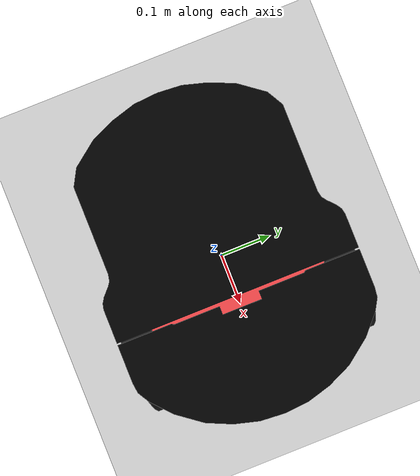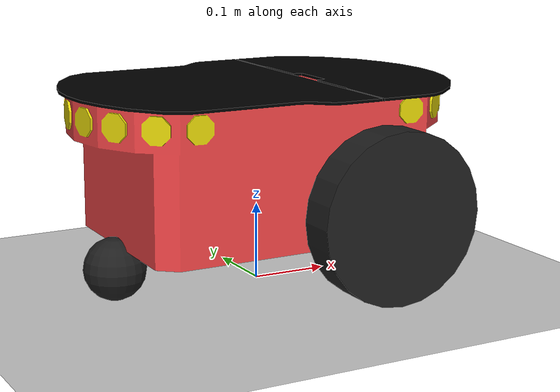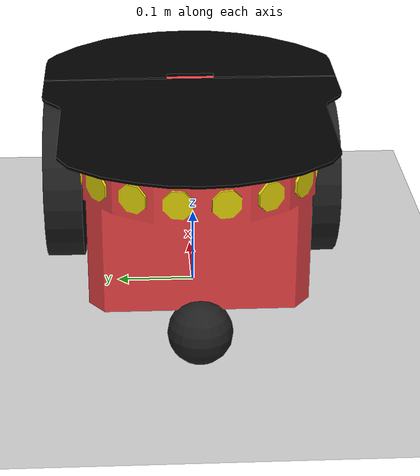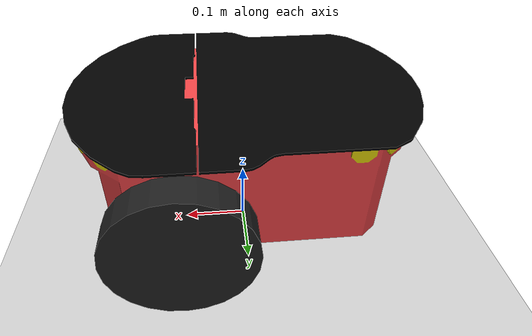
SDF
<?xml version="1.0"?>
<sdf version='1.6'>
  <world name='default'>
    <light name='sun' type='directional'>
      <cast_shadows>1</cast_shadows>
      <pose frame=''>0 0 10 0 -0 0</pose>
      <diffuse>0.8 0.8 0.8 1</diffuse>
      <specular>0.1 0.1 0.1 1</specular>
      <attenuation>
        <range>1000</range>
        <constant>0.9</constant>
        <linear>0.01</linear>
        <quadratic>0.001</quadratic>
      </attenuation>
      <direction>-0.5 0.5 -1</direction>
    </light>
    <model name='ground_plane'>
      <static>1</static>
      <link name='link'>
        <collision name='collision'>
          <geometry>
            <plane>
              <normal>0 0 1</normal>
              <size>100 100</size>
            </plane>
          </geometry>
          <surface>
            <friction>
              <ode>
                <mu>100</mu>
                <mu2>50</mu2>
              </ode>
              <torsional>
                <ode/>
              </torsional>
            </friction>
            <contact>
              <ode/>
            </contact>
            <bounce/>
          </surface>
          <max_contacts>10</max_contacts>
        </collision>
        <visual name='visual'>
          <cast_shadows>0</cast_shadows>
          <geometry>
            <plane>
              <normal>0 0 1</normal>
              <size>100 100</size>
            </plane>
          </geometry>
          <material>
            <script>
              <uri>file://media/materials/scripts/gazebo.material</uri>
              <name>Gazebo/Grey</name>
            </script>
          </material>
        </visual>
        <self_collide>0</self_collide>
        <kinematic>0</kinematic>
        <gravity>1</gravity>
      </link>
    </model>

    <physics name='default_physics' default='0' type='ode'>
      <ode>
        <solver>
          <type>quick</type>
          <iters>10</iters>
          <sor>1.3</sor>
          <use_dynamic_moi_rescaling>0</use_dynamic_moi_rescaling>
        </solver>
        <constraints>
          <cfm>0</cfm>
          <erp>0.2</erp>
          <contact_max_correcting_vel>100</contact_max_correcting_vel>
          <contact_surface_layer>0.001</contact_surface_layer>
        </constraints>
      </ode>
      <max_step_size>0.001</max_step_size>
      <real_time_factor>1</real_time_factor>
      <real_time_update_rate>500</real_time_update_rate>
    </physics>

    <model name='pioneer2dx'>
      <link name='chassis'>
        <pose frame=''>0 0 0.16 0 -0 0</pose>
        <inertial>
          <mass>5.67</mass>
          <inertia>
            <ixx>0.07</ixx>
            <iyy>0.08</iyy>
            <izz>0.1</izz>
            <ixy>0</ixy>
            <ixz>0</ixz>
            <iyz>0</iyz>
          </inertia>
          <pose frame=''>0 0 0 0 -0 0</pose>
        </inertial>
        <collision name='collision'>
          <geometry>
            <box>
              <size>0.445 0.277 0.17</size>
            </box>
          </geometry>
          <max_contacts>10</max_contacts>
          <surface>
            <contact>
              <ode/>
            </contact>
            <bounce/>
            <friction>
              <torsional>
                <ode/>
              </torsional>
              <ode/>
            </friction>
          </surface>
        </collision>
        <collision name='castor_collision'>
          <pose frame=''>-0.2 0 -0.12 0 -0 0</pose>
          <geometry>
            <sphere>
              <radius>0.04</radius>
            </sphere>
          </geometry>
          <surface>
            <friction>
              <ode>
                <mu>0</mu>
                <mu2>0</mu2>
                <slip1>1</slip1>
                <slip2>1</slip2>
              </ode>
              <torsional>
                <ode/>
              </torsional>
            </friction>
            <contact>
              <ode/>
            </contact>
            <bounce/>
          </surface>
          <max_contacts>10</max_contacts>
        </collision>
        <visual name='visual'>
          <pose frame=''>0 0 0.04 0 -0 0</pose>
          <geometry>
            <mesh>
              <uri>model://pioneer2dx/meshes/chassis.dae</uri>
            </mesh>
          </geometry>
        </visual>
        <visual name='castor_visual'>
          <pose frame=''>-0.2 0 -0.12 0 -0 0</pose>
          <geometry>
            <sphere>
              <radius>0.04</radius>
            </sphere>
          </geometry>
          <material>
            <script>
              <uri>file://media/materials/scripts/gazebo.material</uri>
              <name>Gazebo/FlatBlack</name>
            </script>
          </material>
        </visual>
        <self_collide>0</self_collide>
        <enable_wind>0</enable_wind>
        <kinematic>0</kinematic>
      </link>
      <link name="imu">
        <pose>0 0 0.17 0 0 0</pose>
          <inertial>
            <mass>0.1</mass>
          </inertial>
          <visual name="visual">
            <geometry>
              <box>
                <size>0.01 0.01 0.01</size>
              </box>
            </geometry>
          </visual>
          <collision name="collision">
            <geometry>
              <box>
                <size>0.01 0.01 0.01</size>
              </box>
            </geometry>
          </collision>
          <sensor name="imu" type="imu">
            <imu>
              <angular_velocity>
                <x>
                  <noise type="gaussian">
                    <mean>0.0</mean>
                    <stddev>2e-4</stddev>
                    <bias_mean>0.0000075</bias_mean>
                    <bias_stddev>0.0000008</bias_stddev>
                  </noise>
                </x>
                <y>
                  <noise type="gaussian">
                    <mean>0.0</mean>
                    <stddev>2e-4</stddev>
                    <bias_mean>0.0000075</bias_mean>
                    <bias_stddev>0.0000008</bias_stddev>
                  </noise>
                </y>
                <z>
                  <noise type="gaussian">
                    <mean>0.0</mean>
                    <stddev>2e-4</stddev>
                    <bias_mean>0.0000075</bias_mean>
                    <bias_stddev>0.0000008</bias_stddev>
                  </noise>
                </z>
              </angular_velocity>
              <linear_acceleration>
                <x>
                  <noise type="gaussian">
                    <mean>0.0</mean>
                    <stddev>1.7e-2</stddev>
                    <bias_mean>0.1</bias_mean>
                    <bias_stddev>0.001</bias_stddev>
                  </noise>
                </x>
                <y>
                  <noise type="gaussian">
                    <mean>0.0</mean>
                    <stddev>1.7e-2</stddev>
                    <bias_mean>0.1</bias_mean>
                    <bias_stddev>0.001</bias_stddev>
                  </noise>
                </y>
                <z>
                  <noise type="gaussian">
                    <mean>0.0</mean>
                    <stddev>1.7e-2</stddev>
                    <bias_mean>0.1</bias_mean>
                    <bias_stddev>0.001</bias_stddev>
                  </noise>
                </z>
              </linear_acceleration>
            </imu>
            <always_on>1</always_on>
            <update_rate>100</update_rate>
          </sensor>
      </link>
      <link name='right_wheel'>
        <pose frame=''>0.1 -0.17 0.11 -0 1.5707 1.5707</pose>
        <inertial>
          <mass>1.5</mass>
          <inertia>
            <ixx>0.0051</ixx>
            <iyy>0.0051</iyy>
            <izz>0.009</izz>
            <ixy>0</ixy>
            <ixz>0</ixz>
            <iyz>0</iyz>
          </inertia>
          <pose frame=''>0 0 0 0 -0 0</pose>
        </inertial>
        <collision name='collision'>
          <geometry>
            <cylinder>
              <radius>0.11</radius>
              <length>0.05</length>
            </cylinder>
          </geometry>
          <surface>
            <friction>
              <ode>
                <mu>100000</mu>
                <mu2>100000</mu2>
                <slip1>0</slip1>
                <slip2>0</slip2>
              </ode>
              <torsional>
                <ode/>
              </torsional>
            </friction>
            <contact>
              <ode/>
            </contact>
            <bounce/>
          </surface>
          <max_contacts>10</max_contacts>
        </collision>
        <visual name='visual'>
          <geometry>
            <cylinder>
              <radius>0.11</radius>
              <length>0.05</length>
            </cylinder>
          </geometry>
          <material>
            <script>
              <uri>file://media/materials/scripts/gazebo.material</uri>
              <name>Gazebo/FlatBlack</name>
            </script>
          </material>
        </visual>
        <self_collide>0</self_collide>
        <enable_wind>0</enable_wind>
        <kinematic>0</kinematic>
      </link>

      <link name='left_wheel'>
        <pose frame=''>0.1 0.17 0.11 -0 1.5707 1.5707</pose>
        <inertial>
          <mass>1.5</mass>
          <inertia>
            <ixx>0.0051</ixx>
            <iyy>0.0051</iyy>
            <izz>0.009</izz>
            <ixy>0</ixy>
            <ixz>0</ixz>
            <iyz>0</iyz>
          </inertia>
          <pose frame=''>0 0 0 0 -0 0</pose>
        </inertial>
        <collision name='collision'>
          <geometry>
            <cylinder>
              <radius>0.11</radius>
              <length>0.05</length>
            </cylinder>
          </geometry>
          <surface>
            <friction>
              <ode>
                <mu>100000</mu>
                <mu2>100000</mu2>
                <slip1>0</slip1>
                <slip2>0</slip2>
              </ode>
              <torsional>
                <ode/>
              </torsional>
            </friction>
            <contact>
              <ode/>
            </contact>
            <bounce/>
          </surface>
          <max_contacts>10</max_contacts>
        </collision>
        <visual name='visual'>
          <geometry>
            <cylinder>
              <radius>0.11</radius>
              <length>0.05</length>
            </cylinder>
          </geometry>
          <material>
            <script>
              <uri>file://media/materials/scripts/gazebo.material</uri>
              <name>Gazebo/FlatBlack</name>
            </script>
          </material>
        </visual>
        <self_collide>0</self_collide>
        <enable_wind>0</enable_wind>
        <kinematic>0</kinematic>
      </link>

      <link name="ofs">
        <pose>-0.1 0.05 0.17 0 0 0</pose>
          <inertial>
            <mass>0.1</mass>
          </inertial>
          <visual name="visual">
            <geometry>
              <box>
                <size>0.01 0.01 0.01</size>
              </box>
            </geometry>
          </visual>
          <collision name="collision">
            <geometry>
              <box>
                <size>0.01 0.01 0.01</size>
              </box>
            </geometry>
          </collision>
      </link>

      <joint name='left_wheel_hinge' type='revolute'>
        <pose frame=''>0 0 -0.03 0 -0 0</pose>
        <child>left_wheel</child>
        <parent>chassis</parent>
        <axis>
          <xyz>0 1 0</xyz>
          <use_parent_model_frame>1</use_parent_model_frame>
          <limit>
            <lower>-1e+16</lower>
            <upper>1e+16</upper>
          </limit>
          <dynamics>
            <spring_reference>0</spring_reference>
            <spring_stiffness>0</spring_stiffness>
          </dynamics>
        </axis>
      </joint>

      <joint name='right_wheel_hinge' type='revolute'>
        <pose frame=''>0 0 0.03 0 -0 0</pose>
        <child>right_wheel</child>
        <parent>chassis</parent>
        <axis>
          <xyz>0 1 0</xyz>
          <use_parent_model_frame>1</use_parent_model_frame>
          <limit>
            <lower>-1e+16</lower>
            <upper>1e+16</upper>
          </limit>
          <dynamics>
            <spring_reference>0</spring_reference>
            <spring_stiffness>0</spring_stiffness>
          </dynamics>
        </axis>
      </joint>
      <joint name='IMU_hinge' type='revolute'>
        <pose frame=''>0 0 0.0 0 -0 0</pose>
        <child>imu</child>
        <parent>chassis</parent>
        <axis>
          <xyz>0 0 0</xyz>
          <use_parent_model_frame>1</use_parent_model_frame>
          <limit>
            <lower>-1e+16</lower>
            <upper>1e+16</upper>
          </limit>
          <dynamics>
            <spring_reference>0</spring_reference>
            <spring_stiffness>0</spring_stiffness>
          </dynamics>
        </axis>
      </joint>
      <joint name='OFS_hinge' type='revolute'>
        <pose frame=''>0 0 0.0 0 -0 0</pose>
        <child>ofs</child>
        <parent>chassis</parent>
        <axis>
          <xyz>0 0 0</xyz>
          <use_parent_model_frame>1</use_parent_model_frame>
          <limit>
            <lower>-1e+16</lower>
            <upper>1e+16</upper>
          </limit>
          <dynamics>
            <spring_reference>0</spring_reference>
            <spring_stiffness>0</spring_stiffness>
          </dynamics>
        </axis>
      </joint>
    </model>

    <plugin name="GazeboPlugin" filename="lib/libGazeboCoSimPlugin.so"><portNumber>14581</portNumber></plugin>
  </world>
</sdf>
